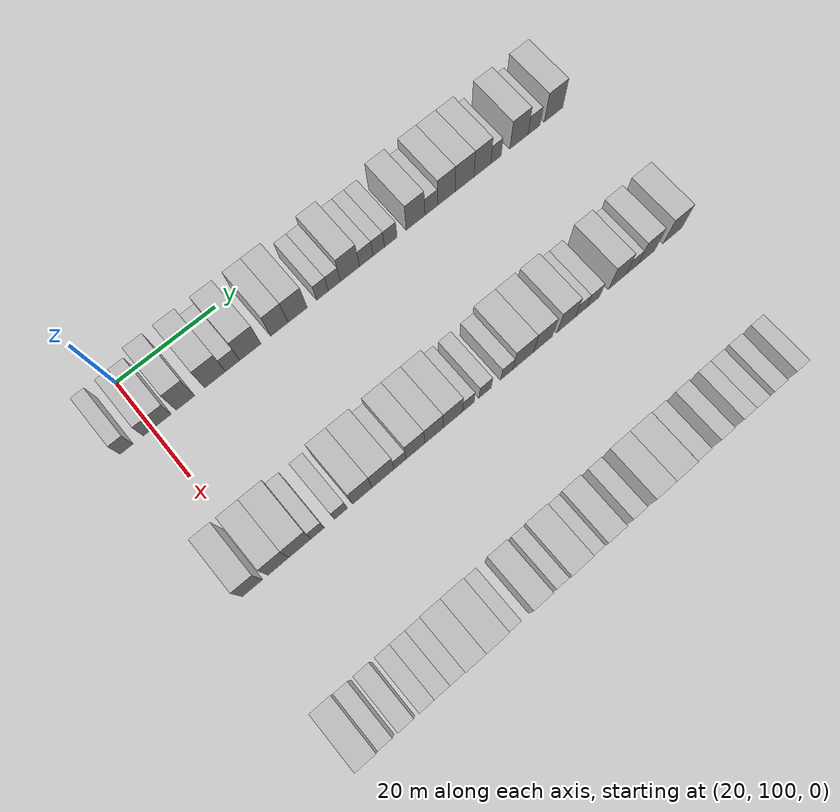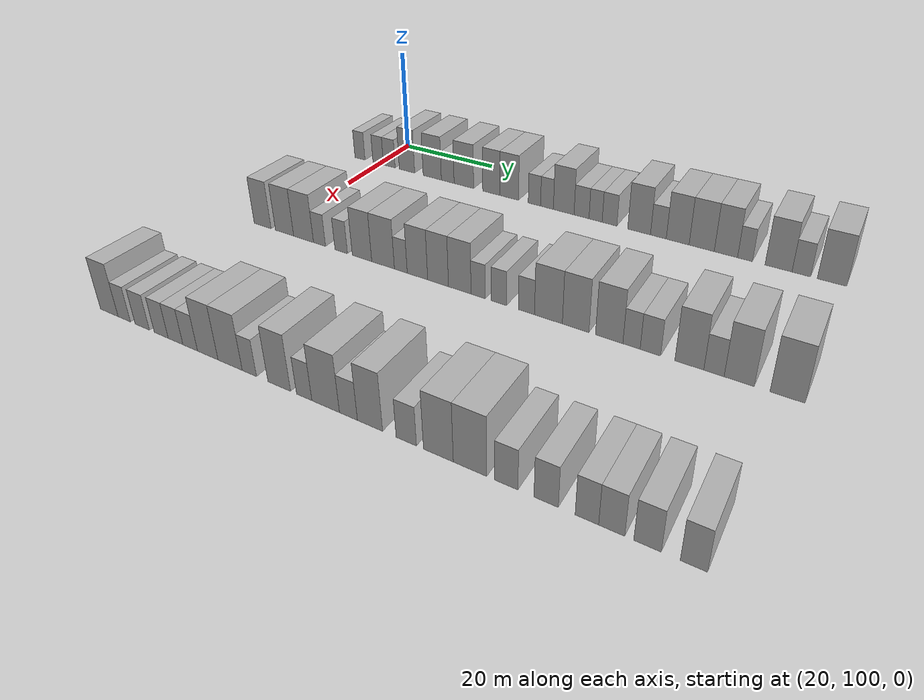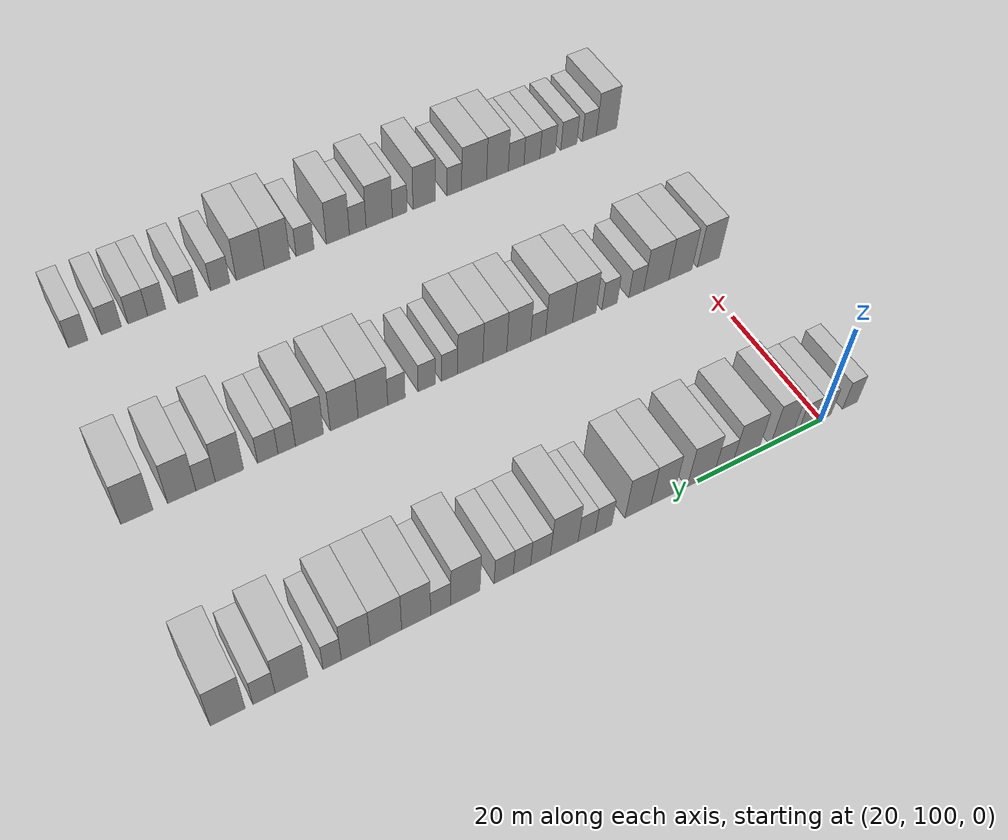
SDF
<sdf version="1.6">
 <world name="default">
  <model name="building_99">
   <static>1</static>
   <pose>25.0000 95.0048 0 0.000000 0.000000 0.000000</pose>
   <link name="link">
    <pose>0 0 3.00 0 0 0</pose>
    <collision name="collision"><geometry><box><size>10.0000 2.5307 6.0000</size></box></geometry></collision>
    <visual name="visual">
     <cast_shadows>0</cast_shadows>
     <geometry><box><size>10.0000 2.5307 6.0000</size></box></geometry>
     <material>
      <script>
       <uri>model://HANNAS_wall/materials/scripts</uri>
       <uri>model://HANNAS_wall/materials/textures</uri>
       <name>vrc/HANNAS_wall</name>
      </script>
     </material>
    </visual>
   </link>
  </model>
  <model name="building_100">
   <static>1</static>
   <pose>25.0000 99.5498 0 0.000000 0.000000 0.000000</pose>
   <link name="link">
    <pose>0 0 3.00 0 0 0</pose>
    <collision name="collision"><geometry><box><size>10.0000 2.5592 6.0000</size></box></geometry></collision>
    <visual name="visual">
     <cast_shadows>0</cast_shadows>
     <geometry><box><size>10.0000 2.5592 6.0000</size></box></geometry>
     <material>
      <script>
       <uri>model://HANNAS_wall/materials/scripts</uri>
       <uri>model://HANNAS_wall/materials/textures</uri>
       <name>vrc/HANNAS_wall</name>
      </script>
     </material>
    </visual>
   </link>
  </model>
  <model name="building_101">
   <static>1</static>
   <pose>25.0000 102.2686 0 0.000000 0.000000 0.000000</pose>
   <link name="link">
    <pose>0 0 3.00 0 0 0</pose>
    <collision name="collision"><geometry><box><size>10.0000 2.8785 6.0000</size></box></geometry></collision>
    <visual name="visual">
     <cast_shadows>0</cast_shadows>
     <geometry><box><size>10.0000 2.8785 6.0000</size></box></geometry>
     <material>
      <script>
       <uri>model://HANNAS_wall/materials/scripts</uri>
       <uri>model://HANNAS_wall/materials/textures</uri>
       <name>vrc/HANNAS_wall</name>
      </script>
     </material>
    </visual>
   </link>
  </model>
  <model name="building_102">
   <static>1</static>
   <pose>25.0000 106.5348 0 0.000000 0.000000 0.000000</pose>
   <link name="link">
    <pose>0 0 4.50 0 0 0</pose>
    <collision name="collision"><geometry><box><size>10.0000 3.6540 9.0000</size></box></geometry></collision>
    <visual name="visual">
     <cast_shadows>0</cast_shadows>
     <geometry><box><size>10.0000 3.6540 9.0000</size></box></geometry>
     <material>
      <script>
       <uri>model://HANNAS_wall/materials/scripts</uri>
       <uri>model://HANNAS_wall/materials/textures</uri>
       <name>vrc/HANNAS_wall</name>
      </script>
     </material>
    </visual>
   </link>
  </model>
  <model name="building_103">
   <static>1</static>
   <pose>25.0000 112.4555 0 0.000000 0.000000 0.000000</pose>
   <link name="link">
    <pose>0 0 4.50 0 0 0</pose>
    <collision name="collision"><geometry><box><size>10.0000 4.1874 9.0000</size></box></geometry></collision>
    <visual name="visual">
     <cast_shadows>0</cast_shadows>
     <geometry><box><size>10.0000 4.1874 9.0000</size></box></geometry>
     <material>
      <script>
       <uri>model://HANNAS_wall/materials/scripts</uri>
       <uri>model://HANNAS_wall/materials/textures</uri>
       <name>vrc/HANNAS_wall</name>
      </script>
     </material>
    </visual>
   </link>
  </model>
  <model name="building_104">
   <static>1</static>
   <pose>25.0000 115.9940 0 0.000000 0.000000 0.000000</pose>
   <link name="link">
    <pose>0 0 3.00 0 0 0</pose>
    <collision name="collision"><geometry><box><size>10.0000 2.8897 6.0000</size></box></geometry></collision>
    <visual name="visual">
     <cast_shadows>0</cast_shadows>
     <geometry><box><size>10.0000 2.8897 6.0000</size></box></geometry>
     <material>
      <script>
       <uri>model://HANNAS_wall/materials/scripts</uri>
       <uri>model://HANNAS_wall/materials/textures</uri>
       <name>vrc/HANNAS_wall</name>
      </script>
     </material>
    </visual>
   </link>
  </model>
  <model name="building_105">
   <static>1</static>
   <pose>25.0000 119.6037 0 0.000000 0.000000 0.000000</pose>
   <link name="link">
    <pose>0 0 4.50 0 0 0</pose>
    <collision name="collision"><geometry><box><size>10.0000 4.3297 9.0000</size></box></geometry></collision>
    <visual name="visual">
     <cast_shadows>0</cast_shadows>
     <geometry><box><size>10.0000 4.3297 9.0000</size></box></geometry>
     <material>
      <script>
       <uri>model://HANNAS_wall/materials/scripts</uri>
       <uri>model://HANNAS_wall/materials/textures</uri>
       <name>vrc/HANNAS_wall</name>
      </script>
     </material>
    </visual>
   </link>
  </model>
  <model name="building_106">
   <static>1</static>
   <pose>25.0000 125.5807 0 0.000000 0.000000 0.000000</pose>
   <link name="link">
    <pose>0 0 4.50 0 0 0</pose>
    <collision name="collision"><geometry><box><size>10.0000 3.6243 9.0000</size></box></geometry></collision>
    <visual name="visual">
     <cast_shadows>0</cast_shadows>
     <geometry><box><size>10.0000 3.6243 9.0000</size></box></geometry>
     <material>
      <script>
       <uri>model://HANNAS_wall/materials/scripts</uri>
       <uri>model://HANNAS_wall/materials/textures</uri>
       <name>vrc/HANNAS_wall</name>
      </script>
     </material>
    </visual>
   </link>
  </model>
  <model name="building_107">
   <static>1</static>
   <pose>25.0000 129.3813 0 0.000000 0.000000 0.000000</pose>
   <link name="link">
    <pose>0 0 4.50 0 0 0</pose>
    <collision name="collision"><geometry><box><size>10.0000 3.9768 9.0000</size></box></geometry></collision>
    <visual name="visual">
     <cast_shadows>0</cast_shadows>
     <geometry><box><size>10.0000 3.9768 9.0000</size></box></geometry>
     <material>
      <script>
       <uri>model://HANNAS_wall/materials/scripts</uri>
       <uri>model://HANNAS_wall/materials/textures</uri>
       <name>vrc/HANNAS_wall</name>
      </script>
     </material>
    </visual>
   </link>
  </model>
  <model name="building_108">
   <static>1</static>
   <pose>25.0000 134.6225 0 0.000000 0.000000 0.000000</pose>
   <link name="link">
    <pose>0 0 3.00 0 0 0</pose>
    <collision name="collision"><geometry><box><size>10.0000 2.5056 6.0000</size></box></geometry></collision>
    <visual name="visual">
     <cast_shadows>0</cast_shadows>
     <geometry><box><size>10.0000 2.5056 6.0000</size></box></geometry>
     <material>
      <script>
       <uri>model://HANNAS_wall/materials/scripts</uri>
       <uri>model://HANNAS_wall/materials/textures</uri>
       <name>vrc/HANNAS_wall</name>
      </script>
     </material>
    </visual>
   </link>
  </model>
  <model name="building_109">
   <static>1</static>
   <pose>25.0000 137.1609 0 0.000000 0.000000 0.000000</pose>
   <link name="link">
    <pose>0 0 3.00 0 0 0</pose>
    <collision name="collision"><geometry><box><size>10.0000 2.5711 6.0000</size></box></geometry></collision>
    <visual name="visual">
     <cast_shadows>0</cast_shadows>
     <geometry><box><size>10.0000 2.5711 6.0000</size></box></geometry>
     <material>
      <script>
       <uri>model://HANNAS_wall/materials/scripts</uri>
       <uri>model://HANNAS_wall/materials/textures</uri>
       <name>vrc/HANNAS_wall</name>
      </script>
     </material>
    </visual>
   </link>
  </model>
  <model name="building_110">
   <static>1</static>
   <pose>25.0000 140.4846 0 0.000000 0.000000 0.000000</pose>
   <link name="link">
    <pose>0 0 4.50 0 0 0</pose>
    <collision name="collision"><geometry><box><size>10.0000 4.0764 9.0000</size></box></geometry></collision>
    <visual name="visual">
     <cast_shadows>0</cast_shadows>
     <geometry><box><size>10.0000 4.0764 9.0000</size></box></geometry>
     <material>
      <script>
       <uri>model://HANNAS_wall/materials/scripts</uri>
       <uri>model://HANNAS_wall/materials/textures</uri>
       <name>vrc/HANNAS_wall</name>
      </script>
     </material>
    </visual>
   </link>
  </model>
  <model name="building_111">
   <static>1</static>
   <pose>25.0000 143.9686 0 0.000000 0.000000 0.000000</pose>
   <link name="link">
    <pose>0 0 3.00 0 0 0</pose>
    <collision name="collision"><geometry><box><size>10.0000 2.8914 6.0000</size></box></geometry></collision>
    <visual name="visual">
     <cast_shadows>0</cast_shadows>
     <geometry><box><size>10.0000 2.8914 6.0000</size></box></geometry>
     <material>
      <script>
       <uri>model://HANNAS_wall/materials/scripts</uri>
       <uri>model://HANNAS_wall/materials/textures</uri>
       <name>vrc/HANNAS_wall</name>
      </script>
     </material>
    </visual>
   </link>
  </model>
  <model name="building_112">
   <static>1</static>
   <pose>25.0000 146.6630 0 0.000000 0.000000 0.000000</pose>
   <link name="link">
    <pose>0 0 3.00 0 0 0</pose>
    <collision name="collision"><geometry><box><size>10.0000 2.4975 6.0000</size></box></geometry></collision>
    <visual name="visual">
     <cast_shadows>0</cast_shadows>
     <geometry><box><size>10.0000 2.4975 6.0000</size></box></geometry>
     <material>
      <script>
       <uri>model://HANNAS_wall/materials/scripts</uri>
       <uri>model://HANNAS_wall/materials/textures</uri>
       <name>vrc/HANNAS_wall</name>
      </script>
     </material>
    </visual>
   </link>
  </model>
  <model name="building_113">
   <static>1</static>
   <pose>25.0000 149.2936 0 0.000000 0.000000 0.000000</pose>
   <link name="link">
    <pose>0 0 3.00 0 0 0</pose>
    <collision name="collision"><geometry><box><size>10.0000 2.7636 6.0000</size></box></geometry></collision>
    <visual name="visual">
     <cast_shadows>0</cast_shadows>
     <geometry><box><size>10.0000 2.7636 6.0000</size></box></geometry>
     <material>
      <script>
       <uri>model://HANNAS_wall/materials/scripts</uri>
       <uri>model://HANNAS_wall/materials/textures</uri>
       <name>vrc/HANNAS_wall</name>
      </script>
     </material>
    </visual>
   </link>
  </model>
  <model name="building_114">
   <static>1</static>
   <pose>25.0000 154.7372 0 0.000000 0.000000 0.000000</pose>
   <link name="link">
    <pose>0 0 4.50 0 0 0</pose>
    <collision name="collision"><geometry><box><size>10.0000 4.1236 9.0000</size></box></geometry></collision>
    <visual name="visual">
     <cast_shadows>0</cast_shadows>
     <geometry><box><size>10.0000 4.1236 9.0000</size></box></geometry>
     <material>
      <script>
       <uri>model://HANNAS_wall/materials/scripts</uri>
       <uri>model://HANNAS_wall/materials/textures</uri>
       <name>vrc/HANNAS_wall</name>
      </script>
     </material>
    </visual>
   </link>
  </model>
  <model name="building_115">
   <static>1</static>
   <pose>25.0000 158.1955 0 0.000000 0.000000 0.000000</pose>
   <link name="link">
    <pose>0 0 3.00 0 0 0</pose>
    <collision name="collision"><geometry><box><size>10.0000 2.7928 6.0000</size></box></geometry></collision>
    <visual name="visual">
     <cast_shadows>0</cast_shadows>
     <geometry><box><size>10.0000 2.7928 6.0000</size></box></geometry>
     <material>
      <script>
       <uri>model://HANNAS_wall/materials/scripts</uri>
       <uri>model://HANNAS_wall/materials/textures</uri>
       <name>vrc/HANNAS_wall</name>
      </script>
     </material>
    </visual>
   </link>
  </model>
  <model name="building_116">
   <static>1</static>
   <pose>25.0000 161.5756 0 0.000000 0.000000 0.000000</pose>
   <link name="link">
    <pose>0 0 4.50 0 0 0</pose>
    <collision name="collision"><geometry><box><size>10.0000 3.9674 9.0000</size></box></geometry></collision>
    <visual name="visual">
     <cast_shadows>0</cast_shadows>
     <geometry><box><size>10.0000 3.9674 9.0000</size></box></geometry>
     <material>
      <script>
       <uri>model://HANNAS_wall/materials/scripts</uri>
       <uri>model://HANNAS_wall/materials/textures</uri>
       <name>vrc/HANNAS_wall</name>
      </script>
     </material>
    </visual>
   </link>
  </model>
  <model name="building_117">
   <static>1</static>
   <pose>25.0000 165.6892 0 0.000000 0.000000 0.000000</pose>
   <link name="link">
    <pose>0 0 4.50 0 0 0</pose>
    <collision name="collision"><geometry><box><size>10.0000 4.2599 9.0000</size></box></geometry></collision>
    <visual name="visual">
     <cast_shadows>0</cast_shadows>
     <geometry><box><size>10.0000 4.2599 9.0000</size></box></geometry>
     <material>
      <script>
       <uri>model://HANNAS_wall/materials/scripts</uri>
       <uri>model://HANNAS_wall/materials/textures</uri>
       <name>vrc/HANNAS_wall</name>
      </script>
     </material>
    </visual>
   </link>
  </model>
  <model name="building_118">
   <static>1</static>
   <pose>25.0000 169.7402 0 0.000000 0.000000 0.000000</pose>
   <link name="link">
    <pose>0 0 4.50 0 0 0</pose>
    <collision name="collision"><geometry><box><size>10.0000 3.8420 9.0000</size></box></geometry></collision>
    <visual name="visual">
     <cast_shadows>0</cast_shadows>
     <geometry><box><size>10.0000 3.8420 9.0000</size></box></geometry>
     <material>
      <script>
       <uri>model://HANNAS_wall/materials/scripts</uri>
       <uri>model://HANNAS_wall/materials/textures</uri>
       <name>vrc/HANNAS_wall</name>
      </script>
     </material>
    </visual>
   </link>
  </model>
  <model name="building_119">
   <static>1</static>
   <pose>25.0000 172.8677 0 0.000000 0.000000 0.000000</pose>
   <link name="link">
    <pose>0 0 3.00 0 0 0</pose>
    <collision name="collision"><geometry><box><size>10.0000 2.4129 6.0000</size></box></geometry></collision>
    <visual name="visual">
     <cast_shadows>0</cast_shadows>
     <geometry><box><size>10.0000 2.4129 6.0000</size></box></geometry>
     <material>
      <script>
       <uri>model://HANNAS_wall/materials/scripts</uri>
       <uri>model://HANNAS_wall/materials/textures</uri>
       <name>vrc/HANNAS_wall</name>
      </script>
     </material>
    </visual>
   </link>
  </model>
  <model name="building_120">
   <static>1</static>
   <pose>25.0000 178.1784 0 0.000000 0.000000 0.000000</pose>
   <link name="link">
    <pose>0 0 4.50 0 0 0</pose>
    <collision name="collision"><geometry><box><size>10.0000 4.2084 9.0000</size></box></geometry></collision>
    <visual name="visual">
     <cast_shadows>0</cast_shadows>
     <geometry><box><size>10.0000 4.2084 9.0000</size></box></geometry>
     <material>
      <script>
       <uri>model://HANNAS_wall/materials/scripts</uri>
       <uri>model://HANNAS_wall/materials/textures</uri>
       <name>vrc/HANNAS_wall</name>
      </script>
     </material>
    </visual>
   </link>
  </model>
  <model name="building_121">
   <static>1</static>
   <pose>25.0000 181.7045 0 0.000000 0.000000 0.000000</pose>
   <link name="link">
    <pose>0 0 3.00 0 0 0</pose>
    <collision name="collision"><geometry><box><size>10.0000 2.8439 6.0000</size></box></geometry></collision>
    <visual name="visual">
     <cast_shadows>0</cast_shadows>
     <geometry><box><size>10.0000 2.8439 6.0000</size></box></geometry>
     <material>
      <script>
       <uri>model://HANNAS_wall/materials/scripts</uri>
       <uri>model://HANNAS_wall/materials/textures</uri>
       <name>vrc/HANNAS_wall</name>
      </script>
     </material>
    </visual>
   </link>
  </model>
  <model name="building_122">
   <static>1</static>
   <pose>25.0000 186.3172 0 0.000000 0.000000 0.000000</pose>
   <link name="link">
    <pose>0 0 4.50 0 0 0</pose>
    <collision name="collision"><geometry><box><size>10.0000 4.3815 9.0000</size></box></geometry></collision>
    <visual name="visual">
     <cast_shadows>0</cast_shadows>
     <geometry><box><size>10.0000 4.3815 9.0000</size></box></geometry>
     <material>
      <script>
       <uri>model://HANNAS_wall/materials/scripts</uri>
       <uri>model://HANNAS_wall/materials/textures</uri>
       <name>vrc/HANNAS_wall</name>
      </script>
     </material>
    </visual>
   </link>
  </model>
  <model name="building_237">
   <static>1</static>
   <pose>55.0000 97.0427 0 0.000000 0.000000 0.000000</pose>
   <link name="link">
    <pose>0 0 4.50 0 0 0</pose>
    <collision name="collision"><geometry><box><size>10.0000 3.8782 9.0000</size></box></geometry></collision>
    <visual name="visual">
     <cast_shadows>0</cast_shadows>
     <geometry><box><size>10.0000 3.8782 9.0000</size></box></geometry>
     <material>
      <script>
       <uri>model://HANNAS_wall/materials/scripts</uri>
       <uri>model://HANNAS_wall/materials/textures</uri>
       <name>vrc/HANNAS_wall</name>
      </script>
     </material>
    </visual>
   </link>
  </model>
  <model name="building_238">
   <static>1</static>
   <pose>55.0000 102.0221 0 0.000000 0.000000 0.000000</pose>
   <link name="link">
    <pose>0 0 4.50 0 0 0</pose>
    <collision name="collision"><geometry><box><size>10.0000 4.0806 9.0000</size></box></geometry></collision>
    <visual name="visual">
     <cast_shadows>0</cast_shadows>
     <geometry><box><size>10.0000 4.0806 9.0000</size></box></geometry>
     <material>
      <script>
       <uri>model://HANNAS_wall/materials/scripts</uri>
       <uri>model://HANNAS_wall/materials/textures</uri>
       <name>vrc/HANNAS_wall</name>
      </script>
     </material>
    </visual>
   </link>
  </model>
  <model name="building_239">
   <static>1</static>
   <pose>55.0000 106.2348 0 0.000000 0.000000 0.000000</pose>
   <link name="link">
    <pose>0 0 4.50 0 0 0</pose>
    <collision name="collision"><geometry><box><size>10.0000 4.3448 9.0000</size></box></geometry></collision>
    <visual name="visual">
     <cast_shadows>0</cast_shadows>
     <geometry><box><size>10.0000 4.3448 9.0000</size></box></geometry>
     <material>
      <script>
       <uri>model://HANNAS_wall/materials/scripts</uri>
       <uri>model://HANNAS_wall/materials/textures</uri>
       <name>vrc/HANNAS_wall</name>
      </script>
     </material>
    </visual>
   </link>
  </model>
  <model name="building_240">
   <static>1</static>
   <pose>55.0000 109.6938 0 0.000000 0.000000 0.000000</pose>
   <link name="link">
    <pose>0 0 3.00 0 0 0</pose>
    <collision name="collision"><geometry><box><size>10.0000 2.5733 6.0000</size></box></geometry></collision>
    <visual name="visual">
     <cast_shadows>0</cast_shadows>
     <geometry><box><size>10.0000 2.5733 6.0000</size></box></geometry>
     <material>
      <script>
       <uri>model://HANNAS_wall/materials/scripts</uri>
       <uri>model://HANNAS_wall/materials/textures</uri>
       <name>vrc/HANNAS_wall</name>
      </script>
     </material>
    </visual>
   </link>
  </model>
  <model name="building_241">
   <static>1</static>
   <pose>55.0000 114.2779 0 0.000000 0.000000 0.000000</pose>
   <link name="link">
    <pose>0 0 3.00 0 0 0</pose>
    <collision name="collision"><geometry><box><size>10.0000 2.5949 6.0000</size></box></geometry></collision>
    <visual name="visual">
     <cast_shadows>0</cast_shadows>
     <geometry><box><size>10.0000 2.5949 6.0000</size></box></geometry>
     <material>
      <script>
       <uri>model://HANNAS_wall/materials/scripts</uri>
       <uri>model://HANNAS_wall/materials/textures</uri>
       <name>vrc/HANNAS_wall</name>
      </script>
     </material>
    </visual>
   </link>
  </model>
  <model name="building_242">
   <static>1</static>
   <pose>55.0000 118.5401 0 0.000000 0.000000 0.000000</pose>
   <link name="link">
    <pose>0 0 4.50 0 0 0</pose>
    <collision name="collision"><geometry><box><size>10.0000 3.9295 9.0000</size></box></geometry></collision>
    <visual name="visual">
     <cast_shadows>0</cast_shadows>
     <geometry><box><size>10.0000 3.9295 9.0000</size></box></geometry>
     <material>
      <script>
       <uri>model://HANNAS_wall/materials/scripts</uri>
       <uri>model://HANNAS_wall/materials/textures</uri>
       <name>vrc/HANNAS_wall</name>
      </script>
     </material>
    </visual>
   </link>
  </model>
  <model name="building_243">
   <static>1</static>
   <pose>55.0000 122.7407 0 0.000000 0.000000 0.000000</pose>
   <link name="link">
    <pose>0 0 4.50 0 0 0</pose>
    <collision name="collision"><geometry><box><size>10.0000 4.4718 9.0000</size></box></geometry></collision>
    <visual name="visual">
     <cast_shadows>0</cast_shadows>
     <geometry><box><size>10.0000 4.4718 9.0000</size></box></geometry>
     <material>
      <script>
       <uri>model://HANNAS_wall/materials/scripts</uri>
       <uri>model://HANNAS_wall/materials/textures</uri>
       <name>vrc/HANNAS_wall</name>
      </script>
     </material>
    </visual>
   </link>
  </model>
  <model name="building_244">
   <static>1</static>
   <pose>55.0000 126.2090 0 0.000000 0.000000 0.000000</pose>
   <link name="link">
    <pose>0 0 3.00 0 0 0</pose>
    <collision name="collision"><geometry><box><size>10.0000 2.4647 6.0000</size></box></geometry></collision>
    <visual name="visual">
     <cast_shadows>0</cast_shadows>
     <geometry><box><size>10.0000 2.4647 6.0000</size></box></geometry>
     <material>
      <script>
       <uri>model://HANNAS_wall/materials/scripts</uri>
       <uri>model://HANNAS_wall/materials/textures</uri>
       <name>vrc/HANNAS_wall</name>
      </script>
     </material>
    </visual>
   </link>
  </model>
  <model name="building_245">
   <static>1</static>
   <pose>55.0000 129.3694 0 0.000000 0.000000 0.000000</pose>
   <link name="link">
    <pose>0 0 4.50 0 0 0</pose>
    <collision name="collision"><geometry><box><size>10.0000 3.8560 9.0000</size></box></geometry></collision>
    <visual name="visual">
     <cast_shadows>0</cast_shadows>
     <geometry><box><size>10.0000 3.8560 9.0000</size></box></geometry>
     <material>
      <script>
       <uri>model://HANNAS_wall/materials/scripts</uri>
       <uri>model://HANNAS_wall/materials/textures</uri>
       <name>vrc/HANNAS_wall</name>
      </script>
     </material>
    </visual>
   </link>
  </model>
  <model name="building_246">
   <static>1</static>
   <pose>55.0000 133.2106 0 0.000000 0.000000 0.000000</pose>
   <link name="link">
    <pose>0 0 4.50 0 0 0</pose>
    <collision name="collision"><geometry><box><size>10.0000 3.8265 9.0000</size></box></geometry></collision>
    <visual name="visual">
     <cast_shadows>0</cast_shadows>
     <geometry><box><size>10.0000 3.8265 9.0000</size></box></geometry>
     <material>
      <script>
       <uri>model://HANNAS_wall/materials/scripts</uri>
       <uri>model://HANNAS_wall/materials/textures</uri>
       <name>vrc/HANNAS_wall</name>
      </script>
     </material>
    </visual>
   </link>
  </model>
  <model name="building_247">
   <static>1</static>
   <pose>55.0000 137.1441 0 0.000000 0.000000 0.000000</pose>
   <link name="link">
    <pose>0 0 4.50 0 0 0</pose>
    <collision name="collision"><geometry><box><size>10.0000 4.0404 9.0000</size></box></geometry></collision>
    <visual name="visual">
     <cast_shadows>0</cast_shadows>
     <geometry><box><size>10.0000 4.0404 9.0000</size></box></geometry>
     <material>
      <script>
       <uri>model://HANNAS_wall/materials/scripts</uri>
       <uri>model://HANNAS_wall/materials/textures</uri>
       <name>vrc/HANNAS_wall</name>
      </script>
     </material>
    </visual>
   </link>
  </model>
  <model name="building_248">
   <static>1</static>
   <pose>55.0000 140.4086 0 0.000000 0.000000 0.000000</pose>
   <link name="link">
    <pose>0 0 3.00 0 0 0</pose>
    <collision name="collision"><geometry><box><size>10.0000 2.4887 6.0000</size></box></geometry></collision>
    <visual name="visual">
     <cast_shadows>0</cast_shadows>
     <geometry><box><size>10.0000 2.4887 6.0000</size></box></geometry>
     <material>
      <script>
       <uri>model://HANNAS_wall/materials/scripts</uri>
       <uri>model://HANNAS_wall/materials/textures</uri>
       <name>vrc/HANNAS_wall</name>
      </script>
     </material>
    </visual>
   </link>
  </model>
  <model name="building_249">
   <static>1</static>
   <pose>55.0000 143.9703 0 0.000000 0.000000 0.000000</pose>
   <link name="link">
    <pose>0 0 3.00 0 0 0</pose>
    <collision name="collision"><geometry><box><size>10.0000 2.6346 6.0000</size></box></geometry></collision>
    <visual name="visual">
     <cast_shadows>0</cast_shadows>
     <geometry><box><size>10.0000 2.6346 6.0000</size></box></geometry>
     <material>
      <script>
       <uri>model://HANNAS_wall/materials/scripts</uri>
       <uri>model://HANNAS_wall/materials/textures</uri>
       <name>vrc/HANNAS_wall</name>
      </script>
     </material>
    </visual>
   </link>
  </model>
  <model name="building_250">
   <static>1</static>
   <pose>55.0000 148.6118 0 0.000000 0.000000 0.000000</pose>
   <link name="link">
    <pose>0 0 3.00 0 0 0</pose>
    <collision name="collision"><geometry><box><size>10.0000 2.6485 6.0000</size></box></geometry></collision>
    <visual name="visual">
     <cast_shadows>0</cast_shadows>
     <geometry><box><size>10.0000 2.6485 6.0000</size></box></geometry>
     <material>
      <script>
       <uri>model://HANNAS_wall/materials/scripts</uri>
       <uri>model://HANNAS_wall/materials/textures</uri>
       <name>vrc/HANNAS_wall</name>
      </script>
     </material>
    </visual>
   </link>
  </model>
  <model name="building_251">
   <static>1</static>
   <pose>55.0000 152.1781 0 0.000000 0.000000 0.000000</pose>
   <link name="link">
    <pose>0 0 4.50 0 0 0</pose>
    <collision name="collision"><geometry><box><size>10.0000 4.4840 9.0000</size></box></geometry></collision>
    <visual name="visual">
     <cast_shadows>0</cast_shadows>
     <geometry><box><size>10.0000 4.4840 9.0000</size></box></geometry>
     <material>
      <script>
       <uri>model://HANNAS_wall/materials/scripts</uri>
       <uri>model://HANNAS_wall/materials/textures</uri>
       <name>vrc/HANNAS_wall</name>
      </script>
     </material>
    </visual>
   </link>
  </model>
  <model name="building_252">
   <static>1</static>
   <pose>55.0000 156.4969 0 0.000000 0.000000 0.000000</pose>
   <link name="link">
    <pose>0 0 4.50 0 0 0</pose>
    <collision name="collision"><geometry><box><size>10.0000 4.1538 9.0000</size></box></geometry></collision>
    <visual name="visual">
     <cast_shadows>0</cast_shadows>
     <geometry><box><size>10.0000 4.1538 9.0000</size></box></geometry>
     <material>
      <script>
       <uri>model://HANNAS_wall/materials/scripts</uri>
       <uri>model://HANNAS_wall/materials/textures</uri>
       <name>vrc/HANNAS_wall</name>
      </script>
     </material>
    </visual>
   </link>
  </model>
  <model name="building_253">
   <static>1</static>
   <pose>55.0000 161.6315 0 0.000000 0.000000 0.000000</pose>
   <link name="link">
    <pose>0 0 4.50 0 0 0</pose>
    <collision name="collision"><geometry><box><size>10.0000 4.1153 9.0000</size></box></geometry></collision>
    <visual name="visual">
     <cast_shadows>0</cast_shadows>
     <geometry><box><size>10.0000 4.1153 9.0000</size></box></geometry>
     <material>
      <script>
       <uri>model://HANNAS_wall/materials/scripts</uri>
       <uri>model://HANNAS_wall/materials/textures</uri>
       <name>vrc/HANNAS_wall</name>
      </script>
     </material>
    </visual>
   </link>
  </model>
  <model name="building_254">
   <static>1</static>
   <pose>55.0000 164.9546 0 0.000000 0.000000 0.000000</pose>
   <link name="link">
    <pose>0 0 3.00 0 0 0</pose>
    <collision name="collision"><geometry><box><size>10.0000 2.5309 6.0000</size></box></geometry></collision>
    <visual name="visual">
     <cast_shadows>0</cast_shadows>
     <geometry><box><size>10.0000 2.5309 6.0000</size></box></geometry>
     <material>
      <script>
       <uri>model://HANNAS_wall/materials/scripts</uri>
       <uri>model://HANNAS_wall/materials/textures</uri>
       <name>vrc/HANNAS_wall</name>
      </script>
     </material>
    </visual>
   </link>
  </model>
  <model name="building_255">
   <static>1</static>
   <pose>55.0000 167.6927 0 0.000000 0.000000 0.000000</pose>
   <link name="link">
    <pose>0 0 3.00 0 0 0</pose>
    <collision name="collision"><geometry><box><size>10.0000 2.9453 6.0000</size></box></geometry></collision>
    <visual name="visual">
     <cast_shadows>0</cast_shadows>
     <geometry><box><size>10.0000 2.9453 6.0000</size></box></geometry>
     <material>
      <script>
       <uri>model://HANNAS_wall/materials/scripts</uri>
       <uri>model://HANNAS_wall/materials/textures</uri>
       <name>vrc/HANNAS_wall</name>
      </script>
     </material>
    </visual>
   </link>
  </model>
  <model name="building_256">
   <static>1</static>
   <pose>55.0000 173.1559 0 0.000000 0.000000 0.000000</pose>
   <link name="link">
    <pose>0 0 4.50 0 0 0</pose>
    <collision name="collision"><geometry><box><size>10.0000 3.9811 9.0000</size></box></geometry></collision>
    <visual name="visual">
     <cast_shadows>0</cast_shadows>
     <geometry><box><size>10.0000 3.9811 9.0000</size></box></geometry>
     <material>
      <script>
       <uri>model://HANNAS_wall/materials/scripts</uri>
       <uri>model://HANNAS_wall/materials/textures</uri>
       <name>vrc/HANNAS_wall</name>
      </script>
     </material>
    </visual>
   </link>
  </model>
  <model name="building_257">
   <static>1</static>
   <pose>55.0000 176.5093 0 0.000000 0.000000 0.000000</pose>
   <link name="link">
    <pose>0 0 3.00 0 0 0</pose>
    <collision name="collision"><geometry><box><size>10.0000 2.7257 6.0000</size></box></geometry></collision>
    <visual name="visual">
     <cast_shadows>0</cast_shadows>
     <geometry><box><size>10.0000 2.7257 6.0000</size></box></geometry>
     <material>
      <script>
       <uri>model://HANNAS_wall/materials/scripts</uri>
       <uri>model://HANNAS_wall/materials/textures</uri>
       <name>vrc/HANNAS_wall</name>
      </script>
     </material>
    </visual>
   </link>
  </model>
  <model name="building_258">
   <static>1</static>
   <pose>55.0000 179.8394 0 0.000000 0.000000 0.000000</pose>
   <link name="link">
    <pose>0 0 4.50 0 0 0</pose>
    <collision name="collision"><geometry><box><size>10.0000 3.9347 9.0000</size></box></geometry></collision>
    <visual name="visual">
     <cast_shadows>0</cast_shadows>
     <geometry><box><size>10.0000 3.9347 9.0000</size></box></geometry>
     <material>
      <script>
       <uri>model://HANNAS_wall/materials/scripts</uri>
       <uri>model://HANNAS_wall/materials/textures</uri>
       <name>vrc/HANNAS_wall</name>
      </script>
     </material>
    </visual>
   </link>
  </model>
  <model name="building_259">
   <static>1</static>
   <pose>55.0000 185.9940 0 0.000000 0.000000 0.000000</pose>
   <link name="link">
    <pose>0 0 4.50 0 0 0</pose>
    <collision name="collision"><geometry><box><size>10.0000 4.3745 9.0000</size></box></geometry></collision>
    <visual name="visual">
     <cast_shadows>0</cast_shadows>
     <geometry><box><size>10.0000 4.3745 9.0000</size></box></geometry>
     <material>
      <script>
       <uri>model://HANNAS_wall/materials/scripts</uri>
       <uri>model://HANNAS_wall/materials/textures</uri>
       <name>vrc/HANNAS_wall</name>
      </script>
     </material>
    </visual>
   </link>
  </model>
  <model name="building_372">
   <static>1</static>
   <pose>85.0000 95.4113 0 0.000000 0.000000 0.000000</pose>
   <link name="link">
    <pose>0 0 4.50 0 0 0</pose>
    <collision name="collision"><geometry><box><size>10.0000 3.8266 9.0000</size></box></geometry></collision>
    <visual name="visual">
     <cast_shadows>0</cast_shadows>
     <geometry><box><size>10.0000 3.8266 9.0000</size></box></geometry>
     <material>
      <script>
       <uri>model://HANNAS_wall/materials/scripts</uri>
       <uri>model://HANNAS_wall/materials/textures</uri>
       <name>vrc/HANNAS_wall</name>
      </script>
     </material>
    </visual>
   </link>
  </model>
  <model name="building_373">
   <static>1</static>
   <pose>85.0000 98.6463 0 0.000000 0.000000 0.000000</pose>
   <link name="link">
    <pose>0 0 3.00 0 0 0</pose>
    <collision name="collision"><geometry><box><size>10.0000 2.6435 6.0000</size></box></geometry></collision>
    <visual name="visual">
     <cast_shadows>0</cast_shadows>
     <geometry><box><size>10.0000 2.6435 6.0000</size></box></geometry>
     <material>
      <script>
       <uri>model://HANNAS_wall/materials/scripts</uri>
       <uri>model://HANNAS_wall/materials/textures</uri>
       <name>vrc/HANNAS_wall</name>
      </script>
     </material>
    </visual>
   </link>
  </model>
  <model name="building_374">
   <static>1</static>
   <pose>85.0000 102.4426 0 0.000000 0.000000 0.000000</pose>
   <link name="link">
    <pose>0 0 3.00 0 0 0</pose>
    <collision name="collision"><geometry><box><size>10.0000 2.9490 6.0000</size></box></geometry></collision>
    <visual name="visual">
     <cast_shadows>0</cast_shadows>
     <geometry><box><size>10.0000 2.9490 6.0000</size></box></geometry>
     <material>
      <script>
       <uri>model://HANNAS_wall/materials/scripts</uri>
       <uri>model://HANNAS_wall/materials/textures</uri>
       <name>vrc/HANNAS_wall</name>
      </script>
     </material>
    </visual>
   </link>
  </model>
  <model name="building_375">
   <static>1</static>
   <pose>85.0000 106.3209 0 0.000000 0.000000 0.000000</pose>
   <link name="link">
    <pose>0 0 3.00 0 0 0</pose>
    <collision name="collision"><geometry><box><size>10.0000 2.8075 6.0000</size></box></geometry></collision>
    <visual name="visual">
     <cast_shadows>0</cast_shadows>
     <geometry><box><size>10.0000 2.8075 6.0000</size></box></geometry>
     <material>
      <script>
       <uri>model://HANNAS_wall/materials/scripts</uri>
       <uri>model://HANNAS_wall/materials/textures</uri>
       <name>vrc/HANNAS_wall</name>
      </script>
     </material>
    </visual>
   </link>
  </model>
  <model name="building_376">
   <static>1</static>
   <pose>85.0000 109.1798 0 0.000000 0.000000 0.000000</pose>
   <link name="link">
    <pose>0 0 3.00 0 0 0</pose>
    <collision name="collision"><geometry><box><size>10.0000 2.9103 6.0000</size></box></geometry></collision>
    <visual name="visual">
     <cast_shadows>0</cast_shadows>
     <geometry><box><size>10.0000 2.9103 6.0000</size></box></geometry>
     <material>
      <script>
       <uri>model://HANNAS_wall/materials/scripts</uri>
       <uri>model://HANNAS_wall/materials/textures</uri>
       <name>vrc/HANNAS_wall</name>
      </script>
     </material>
    </visual>
   </link>
  </model>
  <model name="building_377">
   <static>1</static>
   <pose>85.0000 112.0498 0 0.000000 0.000000 0.000000</pose>
   <link name="link">
    <pose>0 0 3.00 0 0 0</pose>
    <collision name="collision"><geometry><box><size>10.0000 2.8297 6.0000</size></box></geometry></collision>
    <visual name="visual">
     <cast_shadows>0</cast_shadows>
     <geometry><box><size>10.0000 2.8297 6.0000</size></box></geometry>
     <material>
      <script>
       <uri>model://HANNAS_wall/materials/scripts</uri>
       <uri>model://HANNAS_wall/materials/textures</uri>
       <name>vrc/HANNAS_wall</name>
      </script>
     </material>
    </visual>
   </link>
  </model>
  <model name="building_378">
   <static>1</static>
   <pose>85.0000 115.4022 0 0.000000 0.000000 0.000000</pose>
   <link name="link">
    <pose>0 0 4.50 0 0 0</pose>
    <collision name="collision"><geometry><box><size>10.0000 3.8752 9.0000</size></box></geometry></collision>
    <visual name="visual">
     <cast_shadows>0</cast_shadows>
     <geometry><box><size>10.0000 3.8752 9.0000</size></box></geometry>
     <material>
      <script>
       <uri>model://HANNAS_wall/materials/scripts</uri>
       <uri>model://HANNAS_wall/materials/textures</uri>
       <name>vrc/HANNAS_wall</name>
      </script>
     </material>
    </visual>
   </link>
  </model>
  <model name="building_379">
   <static>1</static>
   <pose>85.0000 119.5498 0 0.000000 0.000000 0.000000</pose>
   <link name="link">
    <pose>0 0 4.50 0 0 0</pose>
    <collision name="collision"><geometry><box><size>10.0000 4.4199 9.0000</size></box></geometry></collision>
    <visual name="visual">
     <cast_shadows>0</cast_shadows>
     <geometry><box><size>10.0000 4.4199 9.0000</size></box></geometry>
     <material>
      <script>
       <uri>model://HANNAS_wall/materials/scripts</uri>
       <uri>model://HANNAS_wall/materials/textures</uri>
       <name>vrc/HANNAS_wall</name>
      </script>
     </material>
    </visual>
   </link>
  </model>
  <model name="building_380">
   <static>1</static>
   <pose>85.0000 123.0246 0 0.000000 0.000000 0.000000</pose>
   <link name="link">
    <pose>0 0 3.00 0 0 0</pose>
    <collision name="collision"><geometry><box><size>10.0000 2.5299 6.0000</size></box></geometry></collision>
    <visual name="visual">
     <cast_shadows>0</cast_shadows>
     <geometry><box><size>10.0000 2.5299 6.0000</size></box></geometry>
     <material>
      <script>
       <uri>model://HANNAS_wall/materials/scripts</uri>
       <uri>model://HANNAS_wall/materials/textures</uri>
       <name>vrc/HANNAS_wall</name>
      </script>
     </material>
    </visual>
   </link>
  </model>
  <model name="building_381">
   <static>1</static>
   <pose>85.0000 128.2192 0 0.000000 0.000000 0.000000</pose>
   <link name="link">
    <pose>0 0 4.50 0 0 0</pose>
    <collision name="collision"><geometry><box><size>10.0000 3.8593 9.0000</size></box></geometry></collision>
    <visual name="visual">
     <cast_shadows>0</cast_shadows>
     <geometry><box><size>10.0000 3.8593 9.0000</size></box></geometry>
     <material>
      <script>
       <uri>model://HANNAS_wall/materials/scripts</uri>
       <uri>model://HANNAS_wall/materials/textures</uri>
       <name>vrc/HANNAS_wall</name>
      </script>
     </material>
    </visual>
   </link>
  </model>
  <model name="building_382">
   <static>1</static>
   <pose>85.0000 132.4093 0 0.000000 0.000000 0.000000</pose>
   <link name="link">
    <pose>0 0 3.00 0 0 0</pose>
    <collision name="collision"><geometry><box><size>10.0000 2.5209 6.0000</size></box></geometry></collision>
    <visual name="visual">
     <cast_shadows>0</cast_shadows>
     <geometry><box><size>10.0000 2.5209 6.0000</size></box></geometry>
     <material>
      <script>
       <uri>model://HANNAS_wall/materials/scripts</uri>
       <uri>model://HANNAS_wall/materials/textures</uri>
       <name>vrc/HANNAS_wall</name>
      </script>
     </material>
    </visual>
   </link>
  </model>
  <model name="building_383">
   <static>1</static>
   <pose>85.0000 135.8783 0 0.000000 0.000000 0.000000</pose>
   <link name="link">
    <pose>0 0 4.50 0 0 0</pose>
    <collision name="collision"><geometry><box><size>10.0000 4.4171 9.0000</size></box></geometry></collision>
    <visual name="visual">
     <cast_shadows>0</cast_shadows>
     <geometry><box><size>10.0000 4.4171 9.0000</size></box></geometry>
     <material>
      <script>
       <uri>model://HANNAS_wall/materials/scripts</uri>
       <uri>model://HANNAS_wall/materials/textures</uri>
       <name>vrc/HANNAS_wall</name>
      </script>
     </material>
    </visual>
   </link>
  </model>
  <model name="building_384">
   <static>1</static>
   <pose>85.0000 139.4821 0 0.000000 0.000000 0.000000</pose>
   <link name="link">
    <pose>0 0 3.00 0 0 0</pose>
    <collision name="collision"><geometry><box><size>10.0000 2.7906 6.0000</size></box></geometry></collision>
    <visual name="visual">
     <cast_shadows>0</cast_shadows>
     <geometry><box><size>10.0000 2.7906 6.0000</size></box></geometry>
     <material>
      <script>
       <uri>model://HANNAS_wall/materials/scripts</uri>
       <uri>model://HANNAS_wall/materials/textures</uri>
       <name>vrc/HANNAS_wall</name>
      </script>
     </material>
    </visual>
   </link>
  </model>
  <model name="building_385">
   <static>1</static>
   <pose>85.0000 142.7788 0 0.000000 0.000000 0.000000</pose>
   <link name="link">
    <pose>0 0 4.50 0 0 0</pose>
    <collision name="collision"><geometry><box><size>10.0000 3.8027 9.0000</size></box></geometry></collision>
    <visual name="visual">
     <cast_shadows>0</cast_shadows>
     <geometry><box><size>10.0000 3.8027 9.0000</size></box></geometry>
     <material>
      <script>
       <uri>model://HANNAS_wall/materials/scripts</uri>
       <uri>model://HANNAS_wall/materials/textures</uri>
       <name>vrc/HANNAS_wall</name>
      </script>
     </material>
    </visual>
   </link>
  </model>
  <model name="building_386">
   <static>1</static>
   <pose>85.0000 148.1388 0 0.000000 0.000000 0.000000</pose>
   <link name="link">
    <pose>0 0 3.00 0 0 0</pose>
    <collision name="collision"><geometry><box><size>10.0000 2.9172 6.0000</size></box></geometry></collision>
    <visual name="visual">
     <cast_shadows>0</cast_shadows>
     <geometry><box><size>10.0000 2.9172 6.0000</size></box></geometry>
     <material>
      <script>
       <uri>model://HANNAS_wall/materials/scripts</uri>
       <uri>model://HANNAS_wall/materials/textures</uri>
       <name>vrc/HANNAS_wall</name>
      </script>
     </material>
    </visual>
   </link>
  </model>
  <model name="building_387">
   <static>1</static>
   <pose>85.0000 152.6609 0 0.000000 0.000000 0.000000</pose>
   <link name="link">
    <pose>0 0 4.50 0 0 0</pose>
    <collision name="collision"><geometry><box><size>10.0000 4.1270 9.0000</size></box></geometry></collision>
    <visual name="visual">
     <cast_shadows>0</cast_shadows>
     <geometry><box><size>10.0000 4.1270 9.0000</size></box></geometry>
     <material>
      <script>
       <uri>model://HANNAS_wall/materials/scripts</uri>
       <uri>model://HANNAS_wall/materials/textures</uri>
       <name>vrc/HANNAS_wall</name>
      </script>
     </material>
    </visual>
   </link>
  </model>
  <model name="building_388">
   <static>1</static>
   <pose>85.0000 156.9509 0 0.000000 0.000000 0.000000</pose>
   <link name="link">
    <pose>0 0 4.50 0 0 0</pose>
    <collision name="collision"><geometry><box><size>10.0000 4.4531 9.0000</size></box></geometry></collision>
    <visual name="visual">
     <cast_shadows>0</cast_shadows>
     <geometry><box><size>10.0000 4.4531 9.0000</size></box></geometry>
     <material>
      <script>
       <uri>model://HANNAS_wall/materials/scripts</uri>
       <uri>model://HANNAS_wall/materials/textures</uri>
       <name>vrc/HANNAS_wall</name>
      </script>
     </material>
    </visual>
   </link>
  </model>
  <model name="building_389">
   <static>1</static>
   <pose>85.0000 161.6740 0 0.000000 0.000000 0.000000</pose>
   <link name="link">
    <pose>0 0 3.00 0 0 0</pose>
    <collision name="collision"><geometry><box><size>10.0000 2.9930 6.0000</size></box></geometry></collision>
    <visual name="visual">
     <cast_shadows>0</cast_shadows>
     <geometry><box><size>10.0000 2.9930 6.0000</size></box></geometry>
     <material>
      <script>
       <uri>model://HANNAS_wall/materials/scripts</uri>
       <uri>model://HANNAS_wall/materials/textures</uri>
       <name>vrc/HANNAS_wall</name>
      </script>
     </material>
    </visual>
   </link>
  </model>
  <model name="building_390">
   <static>1</static>
   <pose>85.0000 166.6509 0 0.000000 0.000000 0.000000</pose>
   <link name="link">
    <pose>0 0 3.00 0 0 0</pose>
    <collision name="collision"><geometry><box><size>10.0000 2.9609 6.0000</size></box></geometry></collision>
    <visual name="visual">
     <cast_shadows>0</cast_shadows>
     <geometry><box><size>10.0000 2.9609 6.0000</size></box></geometry>
     <material>
      <script>
       <uri>model://HANNAS_wall/materials/scripts</uri>
       <uri>model://HANNAS_wall/materials/textures</uri>
       <name>vrc/HANNAS_wall</name>
      </script>
     </material>
    </visual>
   </link>
  </model>
  <model name="building_391">
   <static>1</static>
   <pose>85.0000 171.4939 0 0.000000 0.000000 0.000000</pose>
   <link name="link">
    <pose>0 0 3.00 0 0 0</pose>
    <collision name="collision"><geometry><box><size>10.0000 2.7250 6.0000</size></box></geometry></collision>
    <visual name="visual">
     <cast_shadows>0</cast_shadows>
     <geometry><box><size>10.0000 2.7250 6.0000</size></box></geometry>
     <material>
      <script>
       <uri>model://HANNAS_wall/materials/scripts</uri>
       <uri>model://HANNAS_wall/materials/textures</uri>
       <name>vrc/HANNAS_wall</name>
      </script>
     </material>
    </visual>
   </link>
  </model>
  <model name="building_392">
   <static>1</static>
   <pose>85.0000 174.3303 0 0.000000 0.000000 0.000000</pose>
   <link name="link">
    <pose>0 0 3.00 0 0 0</pose>
    <collision name="collision"><geometry><box><size>10.0000 2.9477 6.0000</size></box></geometry></collision>
    <visual name="visual">
     <cast_shadows>0</cast_shadows>
     <geometry><box><size>10.0000 2.9477 6.0000</size></box></geometry>
     <material>
      <script>
       <uri>model://HANNAS_wall/materials/scripts</uri>
       <uri>model://HANNAS_wall/materials/textures</uri>
       <name>vrc/HANNAS_wall</name>
      </script>
     </material>
    </visual>
   </link>
  </model>
  <model name="building_393">
   <static>1</static>
   <pose>85.0000 178.2988 0 0.000000 0.000000 0.000000</pose>
   <link name="link">
    <pose>0 0 3.00 0 0 0</pose>
    <collision name="collision"><geometry><box><size>10.0000 2.9894 6.0000</size></box></geometry></collision>
    <visual name="visual">
     <cast_shadows>0</cast_shadows>
     <geometry><box><size>10.0000 2.9894 6.0000</size></box></geometry>
     <material>
      <script>
       <uri>model://HANNAS_wall/materials/scripts</uri>
       <uri>model://HANNAS_wall/materials/textures</uri>
       <name>vrc/HANNAS_wall</name>
      </script>
     </material>
    </visual>
   </link>
  </model>
  <model name="building_394">
   <static>1</static>
   <pose>85.0000 183.2090 0 0.000000 0.000000 0.000000</pose>
   <link name="link">
    <pose>0 0 3.00 0 0 0</pose>
    <collision name="collision"><geometry><box><size>10.0000 2.8310 6.0000</size></box></geometry></collision>
    <visual name="visual">
     <cast_shadows>0</cast_shadows>
     <geometry><box><size>10.0000 2.8310 6.0000</size></box></geometry>
     <material>
      <script>
       <uri>model://HANNAS_wall/materials/scripts</uri>
       <uri>model://HANNAS_wall/materials/textures</uri>
       <name>vrc/HANNAS_wall</name>
      </script>
     </material>
    </visual>
   </link>
  </model>
 </world>
</sdf>
